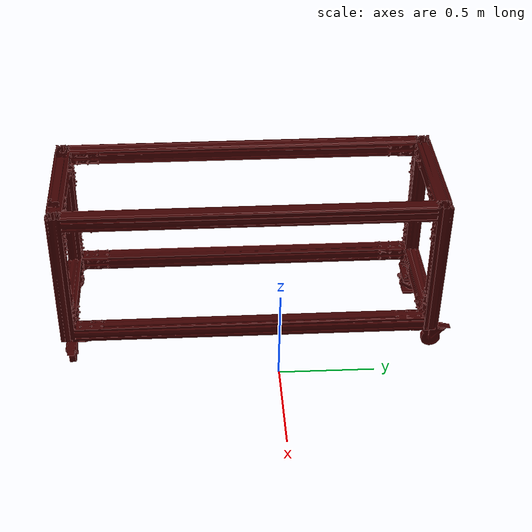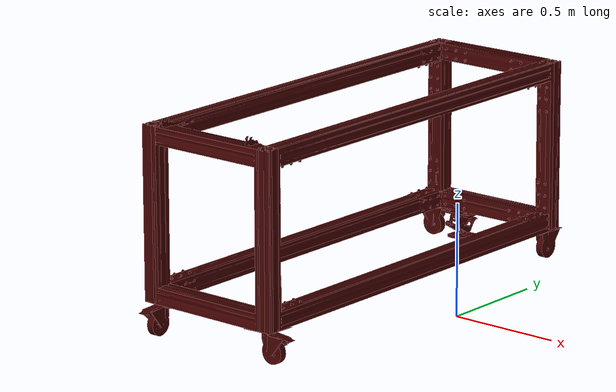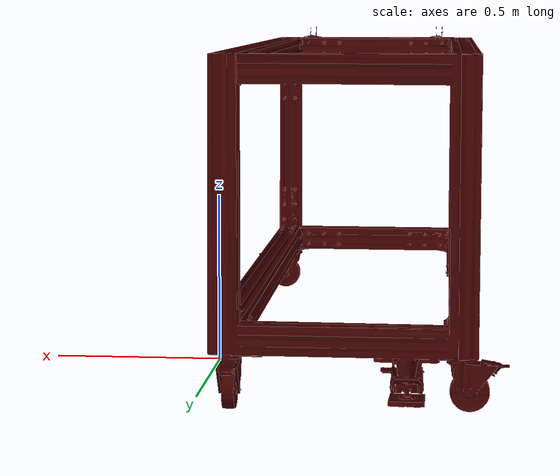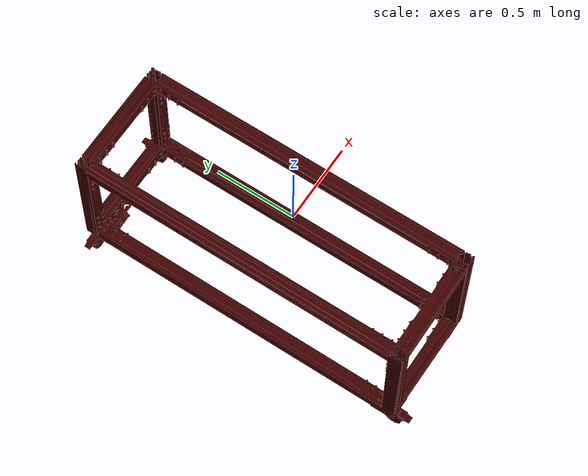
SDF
<sdf version='1.6'>
  <model name='cart_loader'>
    <link name='cart_link'>
      <pose frame=''>0 0 0 -1.571 0 0</pose>
      <inertial>
        <pose frame=''>0 0 0 0 -0 0</pose>
        <mass>0.1</mass>
        <inertia>
          <ixx>0.03</ixx>
          <ixy>0</ixy>
          <ixz>0</ixz>
          <iyy>0.03</iyy>
          <iyz>0</iyz>
          <izz>0.03</izz>
        </inertia>
      </inertial>
      <collision name='cart_link_collision'>
        <pose frame=''>0 0 -0.1168 1.571 -0 0</pose>
        <geometry>
          <mesh>
            <scale>1 1 1</scale>
            <uri>model://crs_support/meshes/Mockup/collision/empty_cart_collision.stl</uri>
          </mesh>
        </geometry>
      </collision>
      <visual name='cart_link_visual'>
        <pose frame=''>0 0 -0.1168 1.571 -0 0</pose>
        <geometry>
          <mesh>
            <scale>1 1 1</scale>
            <uri>model://crs_support/meshes/Mockup/visual/empty_cart.stl</uri>
          </mesh>
        </geometry>
        <material>
          <ambient>0.25 0 0 1.0</ambient>
          <diffuse>0.25 0 0 1.0</diffuse>
          <specular>0.25 0 0 1.0</specular>
          <emissive>0.25 0 0 1.0</emissive>
        </material>
      </visual>
    </link>
    <joint name='world_to_cart' type='fixed'>
      <child>cart_link</child>
      <parent>world</parent>
    </joint>
  </model>
</sdf>
